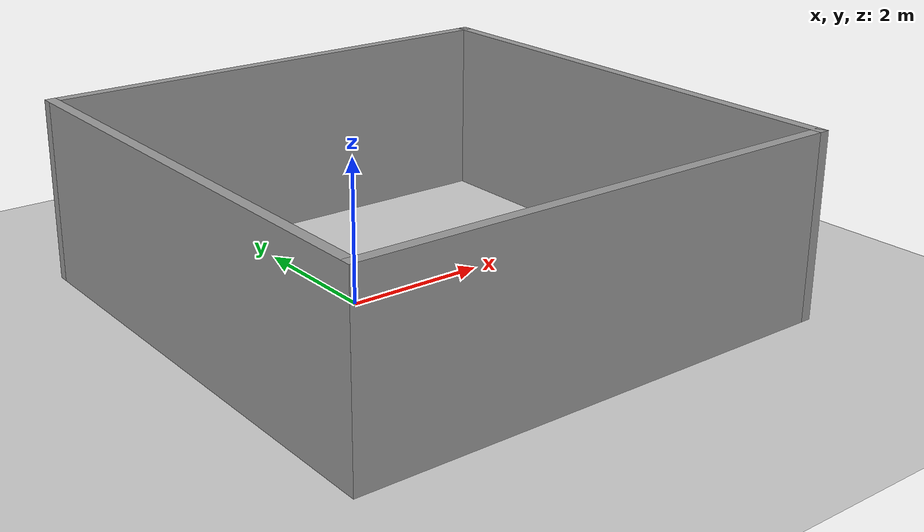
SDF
<sdf version="1.7">
 <world name="default">
  <light name="sun" type="directional">
   <pose>0 0 10 0 -0 0</pose>
   <diffuse>0.8 0.8 0.8 1</diffuse>
   <specular>0.2 0.2 0.2 1</specular>
   <attenuation>
    <range>1000</range>
    <constant>0.9</constant>
    <linear>0.01</linear>
    <quadratic>0.001</quadratic>
   </attenuation>
   <direction>-0.5 0.1 -0.9</direction>
   <spot><inner_angle>0</inner_angle><outer_angle>0</outer_angle><falloff>0</falloff></spot>
  </light>
  <model name="ground_plane">
   <static>1</static>
   <link name="link">
    <collision name="collision">
     <geometry><plane><normal>0 0 1</normal><size>100 100</size></plane></geometry>
     <surface>
      <contact><collide_bitmask>65535</collide_bitmask></contact>
      <friction><ode><mu>100</mu><mu2>50</mu2></ode></friction>
     </surface>
    </collision>
    <visual name="visual">
     <cast_shadows>0</cast_shadows>
     <geometry><plane><normal>0 0 1</normal><size>100 100</size></plane></geometry>
     <material>
      <script><uri>file://media/materials/scripts/gazebo.material</uri><name>Gazebo/Grey</name></script>
     </material>
    </visual>
   </link>
  </model>
  <gravity>0 0 -9.8</gravity>
  <magnetic_field>6e-06 2.3e-05 -4.2e-05</magnetic_field>
  <atmosphere type="adiabatic"/>
  <physics type="ode">
   <max_step_size>0.001</max_step_size>
   <real_time_factor>1</real_time_factor>
   <real_time_update_rate>1000</real_time_update_rate>
  </physics>
  <scene><ambient>0.4 0.4 0.4 1</ambient><background>0.7 0.7 0.7 1</background><shadows>1</shadows></scene>
  <audio><device>default</device></audio>
  <spherical_coordinates>
   <surface_model>EARTH_WGS84</surface_model>
   <latitude_deg>0</latitude_deg>
   <longitude_deg>0</longitude_deg>
   <elevation>0</elevation>
   <heading_deg>0</heading_deg>
  </spherical_coordinates>
  <model name="barabot_map">
   <link name="link_0">
    <inertial>
     <mass>1</mass>
     <inertia><ixx>0.1</ixx><ixy>0</ixy><ixz>0</ixz><iyy>0.1</iyy><iyz>0</iyz><izz>0.1</izz></inertia>
    </inertial>
    <visual name="visual">
     <geometry><sphere><radius>0.3</radius></sphere></geometry>
     <material>
      <lighting>1</lighting>
      <script><uri>file://media/materials/scripts/gazebo.material</uri><name>Gazebo/Blue</name></script>
      <shader type="pixel"><normal_map>__default__</normal_map></shader>
      <ambient>0.3 0.3 0.3 1</ambient>
      <diffuse>0.7 0.7 0.7 1</diffuse>
      <specular>0.01 0.01 0.01 1</specular>
      <emissive>0 0 0 1</emissive>
     </material>
    </visual>
    <collision name="collision">
     <geometry><sphere><radius>0.3</radius></sphere></geometry>
     <surface>
      <friction>
       <ode><mu>1</mu><mu2>1</mu2><fdir1>0 0 0</fdir1><slip1>0</slip1><slip2>0</slip2></ode>
       <torsional>
        <coefficient>1</coefficient>
        <patch_radius>0</patch_radius>
        <surface_radius>0</surface_radius>
        <use_patch_radius>1</use_patch_radius>
        <ode><slip>0</slip></ode>
       </torsional>
      </friction>
      <bounce><restitution_coefficient>0</restitution_coefficient><threshold>1e+06</threshold></bounce>
      <contact>
       <collide_without_contact>0</collide_without_contact>
       <collide_without_contact_bitmask>1</collide_without_contact_bitmask>
       <collide_bitmask>1</collide_bitmask>
       <ode>
        <soft_cfm>0</soft_cfm>
        <soft_erp>0.2</soft_erp>
        <kp>1e+13</kp>
        <kd>1</kd>
        <max_vel>0.01</max_vel>
        <min_depth>0</min_depth>
       </ode>
       <bullet>
        <split_impulse>1</split_impulse>
        <split_impulse_penetration_threshold>-0.01</split_impulse_penetration_threshold>
        <soft_cfm>0</soft_cfm>
        <soft_erp>0.2</soft_erp>
        <kp>1e+13</kp>
        <kd>1</kd>
       </bullet>
      </contact>
     </surface>
    </collision>
   </link>
   <static>0</static>
   <pose>-0.335771 0.420313 0.3 0 -0 0</pose>
  </model>
  <model name="barabot_env">
   <pose>0.815003 -0.371691 0 0 -0 0</pose>
   <link name="Wall_0">
    <collision name="Wall_0_Collision">
     <geometry><box><size>7 0.15 2.5</size></box></geometry>
     <pose>0 0 1.25 0 -0 0</pose>
    </collision>
    <visual name="Wall_0_Visual">
     <pose>0 0 1.25 0 -0 0</pose>
     <geometry><box><size>7 0.15 2.5</size></box></geometry>
     <material>
      <script><uri>file://media/materials/scripts/gazebo.material</uri><name>Gazebo/Grey</name></script>
      <ambient>1 1 1 1</ambient>
     </material>
     <meta><layer>0</layer></meta>
    </visual>
    <pose>-0 -3.425 0 0 -0 0</pose>
   </link>
   <link name="Wall_2">
    <collision name="Wall_2_Collision">
     <geometry><box><size>7 0.15 2.5</size></box></geometry>
     <pose>0 0 1.25 0 -0 0</pose>
    </collision>
    <visual name="Wall_2_Visual">
     <pose>0 0 1.25 0 -0 0</pose>
     <geometry><box><size>7 0.15 2.5</size></box></geometry>
     <material>
      <script><uri>file://media/materials/scripts/gazebo.material</uri><name>Gazebo/Grey</name></script>
      <ambient>1 1 1 1</ambient>
     </material>
     <meta><layer>0</layer></meta>
    </visual>
    <pose>3.425 0 0 0 -0 1.5708</pose>
   </link>
   <link name="Wall_4">
    <collision name="Wall_4_Collision">
     <geometry><box><size>7 0.15 2.5</size></box></geometry>
     <pose>0 0 1.25 0 -0 0</pose>
    </collision>
    <visual name="Wall_4_Visual">
     <pose>0 0 1.25 0 -0 0</pose>
     <geometry><box><size>7 0.15 2.5</size></box></geometry>
     <material>
      <script><uri>file://media/materials/scripts/gazebo.material</uri><name>Gazebo/Grey</name></script>
      <ambient>1 1 1 1</ambient>
     </material>
     <meta><layer>0</layer></meta>
    </visual>
    <pose>-0 3.425 0 0 -0 3.14159</pose>
   </link>
   <link name="Wall_5">
    <collision name="Wall_5_Collision">
     <geometry><box><size>7 0.15 2.5</size></box></geometry>
     <pose>0 0 1.25 0 -0 0</pose>
    </collision>
    <visual name="Wall_5_Visual">
     <pose>0 0 1.25 0 -0 0</pose>
     <geometry><box><size>7 0.15 2.5</size></box></geometry>
     <material>
      <script><uri>file://media/materials/scripts/gazebo.material</uri><name>Gazebo/Grey</name></script>
      <ambient>1 1 1 1</ambient>
     </material>
     <meta><layer>0</layer></meta>
    </visual>
    <pose>-3.425 0 0 0 -0 -1.5708</pose>
   </link>
   <static>1</static>
  </model>
 </world>
</sdf>
